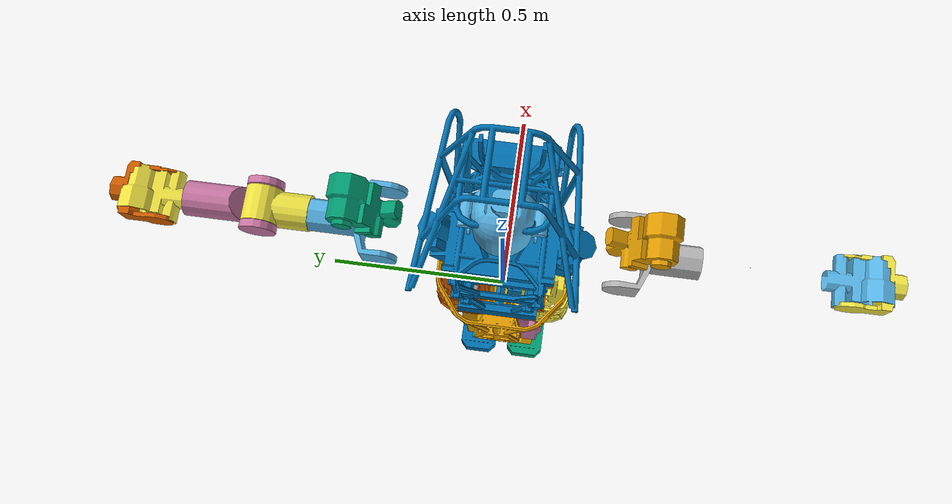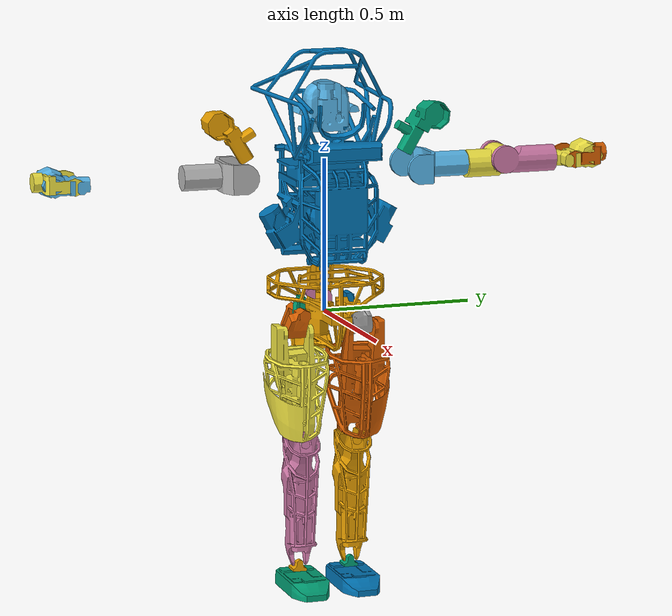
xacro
<robot xmlns:sensor="http://playerstage.sourceforge.net/gazebo/xmlschema/#sensor"
       xmlns:controller="http://playerstage.sourceforge.net/gazebo/xmlschema/#controller"
       xmlns:interface="http://playerstage.sourceforge.net/gazebo/xmlschema/#interface"
       xmlns:xacro="http://playerstage.sourceforge.net/gazebo/xmlschema/#interface"
       name="mit_drc_robot" >

  <include filename="$(find mit_drcsim_scripts)/models/mit_robot_drake/xacro/drc_skeleton_minimal_contact.urdf" />
  <include filename="$(find mit_drcsim_scripts)/models/mit_robot_drake/xacro/drc_robot.transmission" />
</robot>

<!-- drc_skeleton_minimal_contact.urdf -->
<robot name="drc_skeleton">
    <!-- Pelvis must be first link for proper Drake parsing -->
    <link name="pelvis">
        <inertial>
            <mass value="14.2529" />
            <origin xyz="0.0111 0 0.0271" rpy="0 -0 0" />
            <inertia ixx="0.1244" ixy="0.0008" ixz="-0.0007" iyy="0.0958" iyz="-0.0005" izz="0.1167" />
        </inertial>
        <visual>
            <origin xyz="0 0 0" rpy="0 -0 0" />
            <geometry>
                <mesh filename="$(find mit_drcsim_scripts)/models/mit_robot/meshes/pelvis.wrl" scale="1 1 1" />
            </geometry>
        </visual>
    </link>
    <link name="head">
        <inertial>
            <mass value="2.6" />
            <origin xyz="-0.004 0 0.056" rpy="0 -0 0" />
            <inertia ixx="0.009" ixy="0" ixz="0" iyy="0.006" iyz="0" izz="0.007" />
        </inertial>
        <visual>
            <origin xyz="0 0 0" rpy="0 -0 0" />
            <geometry>
                <mesh filename="$(find mit_drcsim_scripts)/models/mit_robot/meshes/head.wrl" scale="1 1 1" />
            </geometry>
        </visual>
    </link>
    <link name="l_clav">
        <inertial>
            <mass value="2.369" />
            <origin xyz="0.014 0.058 0.029" rpy="0 -0 0" />
            <inertia ixx="0.004" ixy="0.001" ixz="0" iyy="0.006" iyz="0" izz="0.007" />
        </inertial>
        <visual>
            <origin xyz="0 0 0" rpy="0 -0 0" />
            <geometry>
                <mesh filename="$(find mit_drcsim_scripts)/models/mit_robot/meshes/l_clav.wrl" scale="1 1 1" />
            </geometry>
        </visual>
    </link>
    <link name="l_farm">
        <inertial>
            <mass value="0.981" />
            <origin xyz="0 0.041 0" rpy="0 -0 0" />
            <inertia ixx="0.003" ixy="0" ixz="0" iyy="0.001" iyz="0" izz="0.003" />
        </inertial>
        <visual>
            <origin xyz="0 0 0" rpy="0 -0 0" />
            <geometry>
                <mesh filename="$(find mit_drcsim_scripts)/models/mit_robot/meshes/l_farm.wrl" scale="1 1 1" />
            </geometry>
        </visual>
    </link>
    <link name="l_foot">
        <inertial>
            <mass value="1.634" />
            <origin xyz="0.027 0 -0.067" rpy="0 -0 0" />
            <inertia ixx="0.002" ixy="0" ixz="0" iyy="0.007" iyz="0" izz="0.008" />
        </inertial>
        <visual>
            <origin xyz="0 0 0" rpy="0 -0 0" />
            <geometry>
                <mesh filename="$(find mit_drcsim_scripts)/models/mit_robot/meshes/l_foot.wrl" scale="1 1 1" />
            </geometry>
        </visual>
        <collision>
	  <origin rpy="0 0 0" xyz="0.18 -0.03 -0.08"/>
	  <geometry>
	    <sphere radius="0"/>
	  </geometry>
	</collision>
	<collision>
	  <origin rpy="0 0 0" xyz="0.18 0.03 -0.08"/>
	  <geometry>
	    <sphere radius="0"/>
	  </geometry>
	</collision>
	<collision>
	  <origin rpy="0 0 0" xyz="-0.07 0.056 -0.08"/>
	  <geometry>
	    <sphere radius="0"/>
	  </geometry>
	</collision>
	<collision>
	  <origin rpy="0 0 0" xyz="-0.07 -0.056 -0.08"/>
	  <geometry>
	    <sphere radius="0"/>
	  </geometry>
	</collision>
    </link>
    <link name="l_hand">
        <inertial>
            <mass value="2.263" />
            <origin xyz="0 0.093 0" rpy="0 -0 0" />
            <inertia ixx="0.01" ixy="0" ixz="0" iyy="0.002" iyz="0" izz="0.01" />
        </inertial>
        <visual>
            <origin xyz="0 0 0" rpy="0 -0 0" />
            <geometry>
                <mesh filename="$(find mit_drcsim_scripts)/models/mit_robot/meshes/l_hand.wrl" scale="1 1 1" />
            </geometry>
        </visual>
    </link>
    <link name="l_larm">
        <inertial>
            <mass value="2.148" />
            <origin xyz="-0.003 0.099 -0.014" rpy="0 -0 0" />
            <inertia ixx="0.005" ixy="0" ixz="0" iyy="0.003" iyz="0" izz="0.006" />
        </inertial>
        <visual>
            <origin xyz="0 0 0" rpy="0 -0 0" />
            <geometry>
                <mesh filename="$(find mit_drcsim_scripts)/models/mit_robot/meshes/l_larm.wrl" scale="1 1 1" />
            </geometry>
        </visual>
    </link>
    <link name="l_lglut">
        <inertial>
            <mass value="0.69" />
            <origin xyz="0.0133341 0.0170484 -0.0312052" rpy="0 -0 0" />
            <inertia ixx="0.000691326" ixy="-2.24344e-05" ixz="2.50508e-06" iyy="0.00126856" iyz="0.000137862" izz="0.00106487" />
        </inertial>
        <visual>
            <origin xyz="0 0 0" rpy="0 -0 0" />
            <geometry>
                <mesh filename="$(find mit_drcsim_scripts)/models/mit_robot/meshes/l_lglut.wrl" scale="1 1 1" />
            </geometry>
        </visual>
    </link>
    <link name="l_lleg">
        <inertial>
            <mass value="4.367" />
            <origin xyz="0.001 0 -0.187" rpy="0 -0 0" />
            <inertia ixx="0.077" ixy="0" ixz="-0.003" iyy="0.076" iyz="0" izz="0.01" />
        </inertial>
        <visual>
            <origin xyz="0 0 0" rpy="0 -0 0" />
            <geometry>
                <mesh filename="$(find mit_drcsim_scripts)/models/mit_robot/meshes/l_lleg.wrl" scale="1 1 1" />
            </geometry>
        </visual>
    </link>
    <link name="l_scap">
        <inertial>
            <mass value="2.707" />
            <origin xyz="-0.002 0.108 0" rpy="0 -0 0" />
            <inertia ixx="0.01" ixy="0" ixz="0" iyy="0.005" iyz="0" izz="0.013" />
        </inertial>
        <visual>
            <origin xyz="0 0 0" rpy="0 -0 0" />
            <geometry>
                <mesh filename="$(find mit_drcsim_scripts)/models/mit_robot/meshes/l_scap.wrl" scale="1 1 1" />
            </geometry>
        </visual>
    </link>
    <link name="l_talus">
        <inertial>
            <mass value="0.1" />
            <origin xyz="0 0 0" rpy="0 -0 0" />
            <inertia ixx="1.01674e-05" ixy="0" ixz="0" iyy="8.42775e-06" iyz="0" izz="1.30101e-05" />
        </inertial>
        <visual>
            <origin xyz="0 0 0" rpy="0 -0 0" />
            <geometry>
                <mesh filename="$(find mit_drcsim_scripts)/models/mit_robot/meshes/l_talus.wrl" scale="1 1 1" />
            </geometry>
        </visual>
    </link>
    <link name="l_uarm">
        <inertial>
            <mass value="1.881" />
            <origin xyz="0.007 0.114 0.008" rpy="0 -0 0" />
            <inertia ixx="0.002" ixy="0" ixz="0" iyy="0.003" iyz="0" izz="0.003" />
        </inertial>
        <visual>
            <origin xyz="0 0 0" rpy="0 -0 0" />
            <geometry>
                <mesh filename="$(find mit_drcsim_scripts)/models/mit_robot/meshes/l_uarm.wrl" scale="1 1 1" />
            </geometry>
        </visual>
    </link>
    <link name="l_uglut">
        <inertial>
            <mass value="0.5166" />
            <origin xyz="0.00529262 -0.00344732 0.00313046" rpy="0 -0 0" />
            <inertia ixx="0.00074276" ixy="-3.79607e-08" ixz="-2.79549e-05" iyy="0.000688179" iyz="-3.2735e-08" izz="0.00041242" />
        </inertial>
        <visual>
            <origin xyz="0 0 0" rpy="0 -0 0" />
            <geometry>
                <mesh filename="$(find mit_drcsim_scripts)/models/mit_robot/meshes/l_uglut.wrl" scale="1 1 1" />
            </geometry>
        </visual>
    </link>
    <link name="l_uleg">
        <inertial>
            <mass value="7.34" />
            <origin xyz="0 0 -0.21" rpy="0 -0 0" />
            <inertia ixx="0.09" ixy="0" ixz="0" iyy="0.09" iyz="0" izz="0.02" />
        </inertial>
        <visual>
            <origin xyz="0 0 0" rpy="0 -0 0" />
            <geometry>
                <mesh filename="$(find mit_drcsim_scripts)/models/mit_robot/meshes/l_uleg.wrl" scale="1 1 1" />
            </geometry>
        </visual>
    </link>
    <link name="ltorso">
        <inertial>
            <mass value="1.92" />
            <origin xyz="-0.0112984 -3.15366e-06 0.0746835" rpy="0 -0 0" />
            <inertia ixx="0.0039092" ixy="-5.04491e-08" ixz="-0.000342157" iyy="0.00341694" iyz="4.87119e-07" izz="0.00174492" />
        </inertial>
        <visual>
            <origin xyz="0 0 0" rpy="0 -0 0" />
            <geometry>
                <mesh filename="$(find mit_drcsim_scripts)/models/mit_robot/meshes/ltorso.wrl" scale="1 1 1" />
            </geometry>
        </visual>
    </link>
    <link name="mtorso">
        <inertial>
            <mass value="0.55" />
            <origin xyz="-0.00816266 -0.0131245 0.0305974" rpy="0 -0 0" />
            <inertia ixx="0.000454181" ixy="-6.10764e-05" ixz="3.94009e-05" iyy="0.000483282" iyz="5.27463e-05" izz="0.000444215" />
        </inertial>
        <visual>
            <origin xyz="0 0 0" rpy="0 -0 0" />
            <geometry>
                <mesh filename="$(find mit_drcsim_scripts)/models/mit_robot/meshes/mtorso.wrl" scale="1 1 1" />
            </geometry>
        </visual>
    </link>
    <link name="r_clav">
        <inertial>
            <mass value="2.369" />
            <origin xyz="0.014 -0.058 0.029" rpy="0 -0 0" />
            <inertia ixx="0.004" ixy="-0.001" ixz="0" iyy="0.006" iyz="0" izz="0.007" />
        </inertial>
        <visual>
            <origin xyz="0 0 0" rpy="0 -0 0" />
            <geometry>
                <mesh filename="$(find mit_drcsim_scripts)/models/mit_robot/meshes/r_clav.wrl" scale="1 1 1" />
            </geometry>
        </visual>
    </link>
    <link name="r_farm">
        <inertial>
            <mass value="0.981" />
            <origin xyz="0 -0.041 0" rpy="0 -0 0" />
            <inertia ixx="0.003" ixy="0" ixz="0" iyy="0.001" iyz="0" izz="0.003" />
        </inertial>
        <visual>
            <origin xyz="0 0 0" rpy="0 -0 0" />
            <geometry>
                <mesh filename="$(find mit_drcsim_scripts)/models/mit_robot/meshes/r_farm.wrl" scale="1 1 1" />
            </geometry>
        </visual>
    </link>
    <link name="r_foot">
        <inertial>
            <mass value="1.634" />
            <origin xyz="0.027 0 -0.067" rpy="0 -0 0" />
            <inertia ixx="0.002" ixy="0" ixz="0" iyy="0.007" iyz="0" izz="0.008" />
        </inertial>
        <visual>
            <origin xyz="0 0 0" rpy="0 -0 0" />
            <geometry>
                <mesh filename="$(find mit_drcsim_scripts)/models/mit_robot/meshes/r_foot.wrl" scale="1 1 1" />
            </geometry>
        </visual>
        <collision>
	  <origin rpy="0 0 0" xyz="0.18 -0.03 -0.08"/>
	  <geometry>
	    <sphere radius="0"/>
	  </geometry>
	</collision>
	<collision>
	  <origin rpy="0 0 0" xyz="0.18 0.03 -0.08"/>
	  <geometry>
	    <sphere radius="0"/>
	  </geometry>
	</collision>
	<collision>
	  <origin rpy="0 0 0" xyz="-0.07 0.056 -0.08"/>
	  <geometry>
	    <sphere radius="0"/>
	  </geometry>
	</collision>
	<collision>
	  <origin rpy="0 0 0" xyz="-0.07 -0.056 -0.08"/>
	  <geometry>
	    <sphere radius="0"/>
	  </geometry>
	</collision>
    </link>
    <link name="r_hand">
        <inertial>
            <mass value="2.263" />
            <origin xyz="0 -0.093 0" rpy="0 -0 0" />
            <inertia ixx="0.01" ixy="0" ixz="0" iyy="0.002" iyz="0" izz="0.01" />
        </inertial>
        <visual>
            <origin xyz="0 0 0" rpy="0 -0 0" />
            <geometry>
                <mesh filename="$(find mit_drcsim_scripts)/models/mit_robot/meshes/r_hand.wrl" scale="1 1 1" />
            </geometry>
        </visual>
    </link>
    <link name="r_larm">
        <inertial>
            <mass value="2.148" />
            <origin xyz="-0.003 -0.099 -0.014" rpy="0 -0 0" />
            <inertia ixx="0.005" ixy="0" ixz="0" iyy="0.003" iyz="0" izz="0.006" />
        </inertial>
        <visual>
            <origin xyz="0 0 0" rpy="0 -0 0" />
            <geometry>
                <mesh filename="$(find mit_drcsim_scripts)/models/mit_robot/meshes/r_larm.wrl" scale="1 1 1" />
            </geometry>
        </visual>
    </link>
    <link name="r_lglut">
        <inertial>
            <mass value="0.69" />
            <origin xyz="0.0133341 -0.0170484 -0.0312052" rpy="0 -0 0" />
            <inertia ixx="0.000691326" ixy="2.24344e-05" ixz="2.50508e-06" iyy="0.00126856" iyz="-0.000137862" izz="0.00106487" />
        </inertial>
        <visual>
            <origin xyz="0 0 0" rpy="0 -0 0" />
            <geometry>
                <mesh filename="$(find mit_drcsim_scripts)/models/mit_robot/meshes/r_lglut.wrl" scale="1 1 1" />
            </geometry>
        </visual>
    </link>
    <link name="r_lleg">
        <inertial>
            <mass value="4.367" />
            <origin xyz="0.001 0 -0.187" rpy="0 -0 0" />
            <inertia ixx="0.077" ixy="-0" ixz="-0.003" iyy="0.076" iyz="-0" izz="0.01" />
        </inertial>
        <visual>
            <origin xyz="0 0 0" rpy="0 -0 0" />
            <geometry>
                <mesh filename="$(find mit_drcsim_scripts)/models/mit_robot/meshes/r_lleg.wrl" scale="1 1 1" />
            </geometry>
        </visual>
    </link>
    <link name="r_scap">
        <inertial>
            <mass value="2.707" />
            <origin xyz="-0.002 -0.108 0" rpy="0 -0 0" />
            <inertia ixx="0.01" ixy="0" ixz="0" iyy="0.005" iyz="0" izz="0.013" />
        </inertial>
        <visual>
            <origin xyz="0 0 0" rpy="0 -0 0" />
            <geometry>
                <mesh filename="$(find mit_drcsim_scripts)/models/mit_robot/meshes/r_scap.wrl" scale="1 1 1" />
            </geometry>
        </visual>
    </link>
    <link name="r_talus">
        <inertial>
            <mass value="0.1" />
            <origin xyz="0 0 0" rpy="0 -0 0" />
            <inertia ixx="1.01674e-05" ixy="0" ixz="0" iyy="8.42775e-06" iyz="0" izz="1.30101e-05" />
        </inertial>
        <visual>
            <origin xyz="0 0 0" rpy="0 -0 0" />
            <geometry>
                <mesh filename="$(find mit_drcsim_scripts)/models/mit_robot/meshes/r_talus.wrl" scale="1 1 1" />
            </geometry>
        </visual>
    </link>
    <link name="r_uarm">
        <inertial>
            <mass value="1.881" />
            <origin xyz="0.007 -0.114 0.008" rpy="0 -0 0" />
            <inertia ixx="0.002" ixy="0" ixz="0" iyy="0.003" iyz="0" izz="0.003" />
        </inertial>
        <visual>
            <origin xyz="0 0 0" rpy="0 -0 0" />
            <geometry>
                <mesh filename="$(find mit_drcsim_scripts)/models/mit_robot/meshes/r_uarm.wrl" scale="1 1 1" />
            </geometry>
        </visual>
    </link>
    <link name="r_uglut">
        <inertial>
            <mass value="0.5166" />
            <origin xyz="0.00529262 0.00344732 0.00313046" rpy="0 -0 0" />
            <inertia ixx="0.00074276" ixy="3.79607e-08" ixz="-2.79549e-05" iyy="0.000688179" iyz="3.2735e-08" izz="0.00041242" />
        </inertial>
        <visual>
            <origin xyz="0 0 0" rpy="0 -0 0" />
            <geometry>
                <mesh filename="$(find mit_drcsim_scripts)/models/mit_robot/meshes/r_uglut.wrl" scale="1 1 1" />
            </geometry>
        </visual>
    </link>
    <link name="r_uleg">
        <inertial>
            <mass value="7.34" />
            <origin xyz="0 0 -0.21" rpy="0 -0 0" />
            <inertia ixx="0.09" ixy="0" ixz="0" iyy="0.09" iyz="0" izz="0.02" />
        </inertial>
        <visual>
            <origin xyz="0 0 0" rpy="0 -0 0" />
            <geometry>
                <mesh filename="$(find mit_drcsim_scripts)/models/mit_robot/meshes/r_uleg.wrl" scale="1 1 1" />
            </geometry>
        </visual>
    </link>
    <link name="utorso">
        <inertial>
            <mass value="18.484" />
            <origin xyz="0.02 -0.001 0.211" rpy="0 -0 0" />
            <inertia ixx="0.395" ixy="0" ixz="0.083" iyy="1.089" iyz="-0.003" izz="0.327" />
        </inertial>
        <visual>
            <origin xyz="0 0 0" rpy="0 -0 0" />
            <geometry>
                <mesh filename="$(find mit_drcsim_scripts)/models/mit_robot/meshes/utorso.wrl" scale="1 1 1" />
            </geometry>
        </visual>
    </link>
    <joint name="back_lbz" type="revolute">
        <origin xyz="-0.0125 0 0" rpy="0 -0 0" />
        <axis xyz="0 0 1" />
        <parent link="pelvis" />
        <child link="ltorso" />
        <dynamics damping="0.1" friction="0" />
        <limit effort="124.016" velocity="12" lower="-0.610865" upper="0.610865" />
        <safety_controller k_position="100" k_velocity="100" soft_lower_limit="-10.6109" soft_upper_limit="10.6109" />
    </joint>
    <joint name="back_mby" type="revolute">
        <origin xyz="0 0 0.09" rpy="0 -0 0" />
        <axis xyz="0 1 0" />
        <parent link="ltorso" />
        <child link="mtorso" />
        <dynamics damping="0.1" friction="0" />
        <limit effort="206.843" velocity="12" lower="-1.2" upper="1.28" />
        <safety_controller k_position="100" k_velocity="100" soft_lower_limit="-11.2" soft_upper_limit="11.28" />
    </joint>
    <joint name="back_ubx" type="revolute">
        <origin xyz="0 0 0.05" rpy="0 -0 0" />
        <axis xyz="1 0 0" />
        <parent link="mtorso" />
        <child link="utorso" />
        <dynamics damping="0.1" friction="0" />
        <limit effort="94.91" velocity="12" lower="-0.790809" upper="0.790809" />
        <safety_controller k_position="100" k_velocity="100" soft_lower_limit="-10.7908" soft_upper_limit="10.7908" />
    </joint>
    <joint name="l_arm_elx" type="revolute">
        <origin xyz="0 0.121 0.013" rpy="0 -0 0" />
        <axis xyz="1 0 0" />
        <parent link="l_uarm" />
        <child link="l_larm" />
        <dynamics damping="0.1" friction="0" />
        <limit effort="114" velocity="12" lower="0" upper="2.35619" />
        <safety_controller k_position="100" k_velocity="100" soft_lower_limit="-10" soft_upper_limit="12.3562" />
    </joint>
    <joint name="l_arm_ely" type="revolute">
        <origin xyz="0 0.185 0" rpy="0 -0 0" />
        <axis xyz="0 1 0" />
        <parent link="l_scap" />
        <child link="l_uarm" />
        <dynamics damping="0.1" friction="0" />
        <limit effort="114" velocity="12" lower="0" upper="3.14159" />
        <safety_controller k_position="100" k_velocity="100" soft_lower_limit="-10" soft_upper_limit="13.1416" />
    </joint>
    <joint name="l_arm_mwx" type="revolute">
        <origin xyz="0 0.058 0" rpy="0 -0 0" />
        <axis xyz="1 0 0" />
        <parent link="l_farm" />
        <child link="l_hand" />
        <dynamics damping="0.1" friction="0" />
        <limit effort="60" velocity="12" lower="-0.436" upper="1.571" />
        <safety_controller k_position="100" k_velocity="100" soft_lower_limit="-10.436" soft_upper_limit="11.571" />
    </joint>
    <joint name="l_arm_shx" type="revolute">
        <origin xyz="0 0.075 0.036" rpy="0 -0 0" />
        <axis xyz="1 0 0" />
        <parent link="l_clav" />
        <child link="l_scap" />
        <dynamics damping="0.1" friction="0" />
        <limit effort="170" velocity="12" lower="-1.39626" upper="1.74533" />
        <safety_controller k_position="100" k_velocity="100" soft_lower_limit="-11.3963" soft_upper_limit="11.7453" />
    </joint>
    <joint name="l_arm_usy" type="revolute">
        <origin xyz="0.024 0.221 0.289" rpy="0 -0 0" />
        <axis xyz="0 0.5 0.866025" />
        <parent link="utorso" />
        <child link="l_clav" />
        <dynamics damping="0.1" friction="0" />
        <limit effort="212" velocity="12" lower="-1.9635" upper="1.9635" />
        <safety_controller k_position="100" k_velocity="100" soft_lower_limit="-11.9635" soft_upper_limit="11.9635" />
    </joint>
    <joint name="l_arm_uwy" type="revolute">
        <origin xyz="0 0.188 -0.013" rpy="0 -0 0" />
        <axis xyz="0 1 0" />
        <parent link="l_larm" />
        <child link="l_farm" />
        <dynamics damping="0.1" friction="0" />
        <limit effort="114" velocity="12" lower="-1.571" upper="1.571" />
        <safety_controller k_position="100" k_velocity="100" soft_lower_limit="-11.571" soft_upper_limit="11.571" />
    </joint>
    <joint name="l_leg_kny" type="revolute">
        <origin xyz="-0.05 0 -0.374" rpy="0 -0 0" />
        <axis xyz="0 1 0" />
        <parent link="l_uleg" />
        <child link="l_lleg" />
        <dynamics damping="0.1" friction="0" />
        <limit effort="220" velocity="12" lower="0" upper="2.45" />
        <safety_controller k_position="100" k_velocity="100" soft_lower_limit="-10" soft_upper_limit="12.45" />
    </joint>
    <joint name="l_leg_lax" type="revolute">
        <origin xyz="0 0 0" rpy="0 -0 0" />
        <axis xyz="1 0 0" />
        <parent link="l_talus" />
        <child link="l_foot" />
        <dynamics damping="0.1" friction="0" />
        <limit effort="90" velocity="12" lower="-0.436" upper="0.436" />
        <safety_controller k_position="100" k_velocity="100" soft_lower_limit="-10.436" soft_upper_limit="10.436" />
    </joint>
    <joint name="l_leg_lhy" type="revolute">
        <origin xyz="0.05 0 -0.05" rpy="0 -0 0" />
        <axis xyz="0 1 0" />
        <parent link="l_lglut" />
        <child link="l_uleg" />
        <dynamics damping="0.1" friction="0" />
        <limit effort="260" velocity="12" lower="-1.75" upper="0.524" />
        <safety_controller k_position="100" k_velocity="100" soft_lower_limit="-11.75" soft_upper_limit="10.524" />
    </joint>
    <joint name="l_leg_mhx" type="revolute">
        <origin xyz="0 0 0" rpy="0 -0 0" />
        <axis xyz="1 0 0" />
        <parent link="l_uglut" />
        <child link="l_lglut" />
        <dynamics damping="0.1" friction="0" />
        <limit effort="180" velocity="12" lower="-0.47" upper="0.495" />
        <safety_controller k_position="100" k_velocity="100" soft_lower_limit="-10.47" soft_upper_limit="10.495" />
    </joint>
    <joint name="l_leg_uay" type="revolute">
        <origin xyz="0 0 -0.422" rpy="0 -0 0" />
        <axis xyz="0 1 0" />
        <parent link="l_lleg" />
        <child link="l_talus" />
        <dynamics damping="0.1" friction="0" />
        <limit effort="220" velocity="12" lower="-0.698" upper="0.698" />
        <safety_controller k_position="100" k_velocity="100" soft_lower_limit="-10.698" soft_upper_limit="10.698" />
    </joint>
    <joint name="l_leg_uhz" type="revolute">
        <origin xyz="0 0.089 0" rpy="0 -0 0" />
        <axis xyz="0 0 1" />
        <parent link="pelvis" />
        <child link="l_uglut" />
        <dynamics damping="0.1" friction="0" />
        <limit effort="110" velocity="12" lower="-0.32" upper="1.14" />
        <safety_controller k_position="100" k_velocity="100" soft_lower_limit="-10.32" soft_upper_limit="11.14" />
    </joint>
    <joint name="neck_ay" type="revolute">
        <origin xyz="0.011 0 0.44" rpy="0 -0 0" />
        <axis xyz="0 1 0" />
        <parent link="utorso" />
        <child link="head" />
        <dynamics damping="0.1" friction="0" />
        <limit effort="5" velocity="12" lower="-0.785398" upper="0.785398" />
        <safety_controller k_position="100" k_velocity="100" soft_lower_limit="-10.7854" soft_upper_limit="10.7854" />
    </joint>
    <joint name="r_arm_elx" type="revolute">
        <origin xyz="0 -0.121 0.013" rpy="0 -0 0" />
        <axis xyz="1 0 0" />
        <parent link="r_uarm" />
        <child link="r_larm" />
        <dynamics damping="0.1" friction="0" />
        <limit effort="114" velocity="12" lower="-2.35619" upper="0" />
        <safety_controller k_position="100" k_velocity="100" soft_lower_limit="-12.3562" soft_upper_limit="10" />
    </joint>
    <joint name="r_arm_ely" type="revolute">
        <origin xyz="0 -0.185 0" rpy="0 -0 0" />
        <axis xyz="0 1 0" />
        <parent link="r_scap" />
        <child link="r_uarm" />
        <dynamics damping="0.1" friction="0" />
        <limit effort="114" velocity="12" lower="0" upper="3.14159" />
        <safety_controller k_position="100" k_velocity="100" soft_lower_limit="-10" soft_upper_limit="13.1416" />
    </joint>
    <joint name="r_arm_mwx" type="revolute">
        <origin xyz="0 -0.058 0" rpy="0 -0 0" />
        <axis xyz="1 0 0" />
        <parent link="r_farm" />
        <child link="r_hand" />
        <dynamics damping="0.1" friction="0" />
        <limit effort="60" velocity="12" lower="-1.571" upper="0.436" />
        <safety_controller k_position="100" k_velocity="100" soft_lower_limit="-11.571" soft_upper_limit="10.436" />
    </joint>
    <joint name="r_arm_shx" type="revolute">
        <origin xyz="0 -0.075 0.036" rpy="0 -0 0" />
        <axis xyz="1 0 0" />
        <parent link="r_clav" />
        <child link="r_scap" />
        <dynamics damping="0.1" friction="0" />
        <limit effort="170" velocity="12" lower="-1.74533" upper="1.39626" />
        <safety_controller k_position="100" k_velocity="100" soft_lower_limit="-11.7453" soft_upper_limit="11.3963" />
    </joint>
    <joint name="r_arm_usy" type="revolute">
        <origin xyz="0.024 -0.221 0.289" rpy="0 -0 0" />
        <axis xyz="0 -0.5 0.866025" />
        <parent link="utorso" />
        <child link="r_clav" />
        <dynamics damping="0.1" friction="0" />
        <limit effort="212" velocity="12" lower="-1.9635" upper="1.9635" />
        <safety_controller k_position="100" k_velocity="100" soft_lower_limit="-11.9635" soft_upper_limit="11.9635" />
    </joint>
    <joint name="r_arm_uwy" type="revolute">
        <origin xyz="0 -0.188 -0.013" rpy="0 -0 0" />
        <axis xyz="0 1 0" />
        <parent link="r_larm" />
        <child link="r_farm" />
        <dynamics damping="0.1" friction="0" />
        <limit effort="114" velocity="12" lower="-1.571" upper="1.571" />
        <safety_controller k_position="100" k_velocity="100" soft_lower_limit="-11.571" soft_upper_limit="11.571" />
    </joint>
    <joint name="r_leg_kny" type="revolute">
        <origin xyz="-0.05 0 -0.374" rpy="0 -0 0" />
        <axis xyz="0 1 0" />
        <parent link="r_uleg" />
        <child link="r_lleg" />
        <dynamics damping="0.1" friction="0" />
        <limit effort="220" velocity="12" lower="0" upper="2.45" />
        <safety_controller k_position="100" k_velocity="100" soft_lower_limit="-10" soft_upper_limit="12.45" />
    </joint>
    <joint name="r_leg_lax" type="revolute">
        <origin xyz="0 0 0" rpy="0 -0 0" />
        <axis xyz="1 0 0" />
        <parent link="r_talus" />
        <child link="r_foot" />
        <dynamics damping="0.1" friction="0" />
        <limit effort="90" velocity="12" lower="-0.436" upper="0.436" />
        <safety_controller k_position="100" k_velocity="100" soft_lower_limit="-10.436" soft_upper_limit="10.436" />
    </joint>
    <joint name="r_leg_lhy" type="revolute">
        <origin xyz="0.05 0 -0.05" rpy="0 -0 0" />
        <axis xyz="0 1 0" />
        <parent link="r_lglut" />
        <child link="r_uleg" />
        <dynamics damping="0.1" friction="0" />
        <limit effort="260" velocity="12" lower="-1.745" upper="0.524" />
        <safety_controller k_position="100" k_velocity="100" soft_lower_limit="-11.745" soft_upper_limit="10.524" />
    </joint>
    <joint name="r_leg_mhx" type="revolute">
        <origin xyz="0 0 0" rpy="0 -0 0" />
        <axis xyz="1 0 0" />
        <parent link="r_uglut" />
        <child link="r_lglut" />
        <dynamics damping="0.1" friction="0" />
        <limit effort="180" velocity="12" lower="-0.495" upper="0.47" />
        <safety_controller k_position="100" k_velocity="100" soft_lower_limit="-10.495" soft_upper_limit="10.47" />
    </joint>
    <joint name="r_leg_uay" type="revolute">
        <origin xyz="0 0 -0.422" rpy="0 -0 0" />
        <axis xyz="0 1 0" />
        <parent link="r_lleg" />
        <child link="r_talus" />
        <dynamics damping="0.1" friction="0" />
        <limit effort="220" velocity="12" lower="-0.698" upper="0.698" />
        <safety_controller k_position="100" k_velocity="100" soft_lower_limit="-10.698" soft_upper_limit="10.698" />
    </joint>
    <joint name="r_leg_uhz" type="revolute">
        <origin xyz="0 -0.089 0" rpy="0 -0 0" />
        <axis xyz="0 0 1" />
        <parent link="pelvis" />
        <child link="r_uglut" />
        <dynamics damping="0.1" friction="0" />
        <limit effort="260" velocity="12" lower="-1.14" upper="0.32" />
        <safety_controller k_position="100" k_velocity="100" soft_lower_limit="-11.14" soft_upper_limit="10.32" />
    </joint>
</robot>
